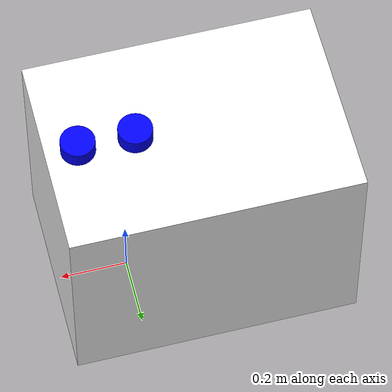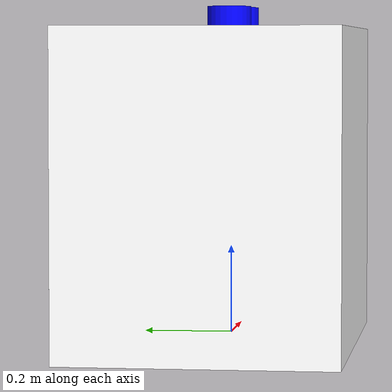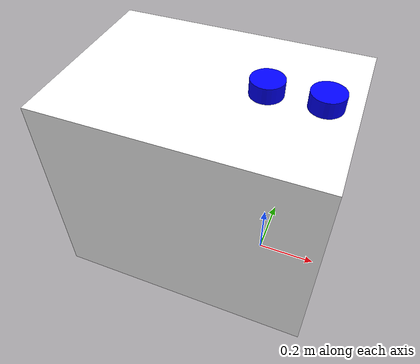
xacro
<?xml version="1.0"?>
<robot name="roboway" xmlns:xacro="http://www.ros.org/wiki/xacro">
  <material name="white">
      <color rgba="1 1 1 1"/>
  </material>
  <material name="blue">
      <color rgba="0 0 1 1"/>
  </material>
  <material name="black">
      <color rgba="0 0 0 1"/>
  </material>

  <link name="base_link">
    <visual>
      <geometry>
        <box size="0.85 0.60 0.7" />
      </geometry>
      <origin xyz="-0.205 0 0.35"/>
      <material name="white"/>
    </visual>
  </link>

  <link name="velodyne">
    <visual>
      <geometry>
        <cylinder length="0.05" radius="0.05" />
      </geometry>
      <material name="blue"/>
    </visual>
  </link>
  <joint name="velodyne_link_joint" type="fixed">
    <parent link="base_link" />
    <child link="velodyne" />
    <origin xyz="0.125 0 0.725" />
  </joint>

  <link name="laser">
    <visual>
      <geometry>
        <cylinder length="0.05" radius="0.05" />
      </geometry>
      <material name="blue"/>
    </visual>
  </link>
  <joint name="laser_link_joint" type="fixed">
    <parent link="base_link" />
    <child link="laser" />
    <origin xyz="0.16 0 0.12" rpy="0 3.1415 0" />
  </joint>

  <link name="ultrasoundLaser">
    <visual>
      <geometry>
        <cylinder length="0.05" radius="0.05" />
      </geometry>
      <material name="blue"/>
    </visual>
  </link>
  <joint name="ultrasoundLaser_link_joint" type="fixed">
    <parent link="base_link" />
    <child link="ultrasoundLaser" />
    <origin xyz="-0.04 0 0.725" />
  </joint>

</robot>
